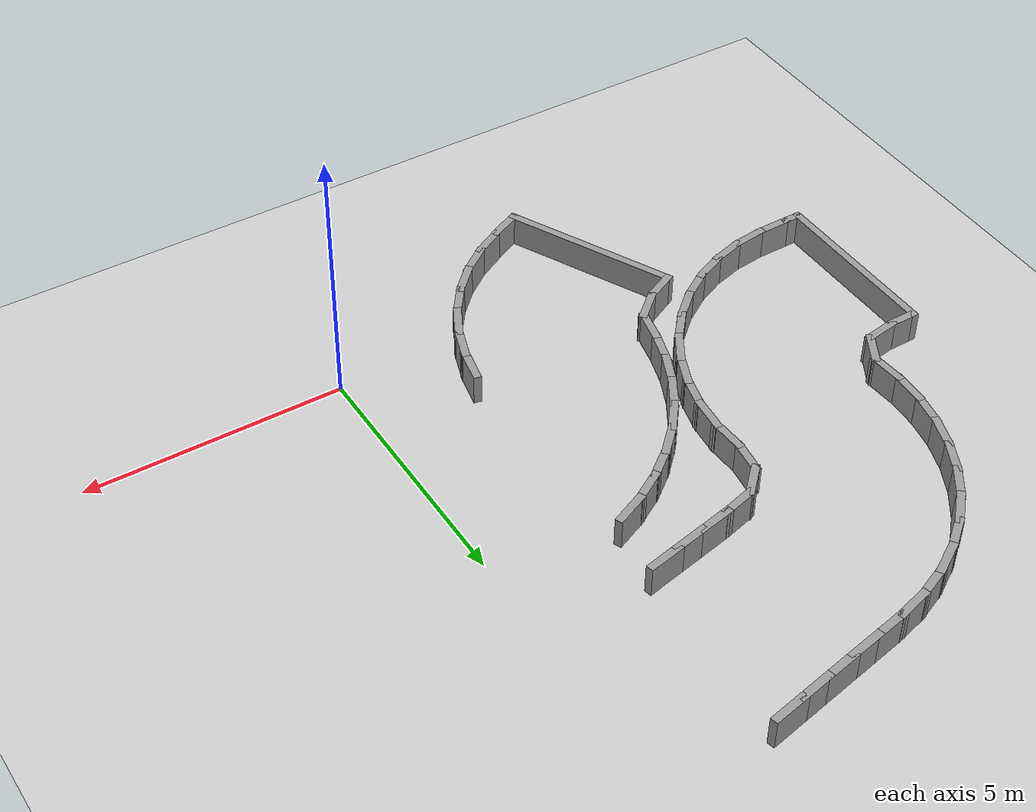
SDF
<sdf version="1.7">
 <world name="default">
  <model name="ground_plane">
   <static>1</static>
   <link name="link">
    <collision name="collision">
     <geometry><plane><normal>0 0 1</normal><size>100 100</size></plane></geometry>
     <surface><friction><ode><mu>100</mu><mu2>50</mu2></ode></friction></surface>
    </collision>
    <visual name="visual">
     <cast_shadows>0</cast_shadows>
     <geometry><plane><normal>0 0 1</normal><size>100 100</size></plane></geometry>
     <material>
      <script><uri>file://media/materials/scripts/gazebo.material</uri><name>Gazebo/Grey</name></script>
     </material>
    </visual>
   </link>
  </model>
  <model name="rand_turn_07">
   <link name="Wall_0">
    <collision name="Wall_0_Collision">
     <geometry><box><size>0.7500 0.1500 0.6000</size></box></geometry>
     <pose>0 0 0.3000 0 -0 0</pose>
    </collision>
    <visual name="Wall_0_Visual">
     <pose>0 0 0.3000 0 -0 0</pose>
     <geometry><box><size>0.7500 0.1500 0.6000</size></box></geometry>
     <material>
      <script><uri>file://media/materials/scripts/gazebo.material</uri><name>Gazebo/Grey</name></script>
      <ambient>1 1 1 1</ambient>
     </material>
    </visual>
    <pose>-6.0920 1.2048 0 0 -0 0.45567</pose>
   </link>
   <link name="Wall_1">
    <collision name="Wall_1_Collision">
     <geometry><box><size>0.7337 0.1500 0.6000</size></box></geometry>
     <pose>0 0 0.3000 0 -0 0</pose>
    </collision>
    <visual name="Wall_1_Visual">
     <pose>0 0 0.3000 0 -0 0</pose>
     <geometry><box><size>0.7337 0.1500 0.6000</size></box></geometry>
     <material>
      <script><uri>file://media/materials/scripts/gazebo.material</uri><name>Gazebo/Grey</name></script>
      <ambient>1 1 1 1</ambient>
     </material>
    </visual>
    <pose>-5.6029 1.5290 0 0 -0 0.71843</pose>
   </link>
   <link name="Wall_2">
    <collision name="Wall_2_Collision">
     <geometry><box><size>0.7490 0.1500 0.6000</size></box></geometry>
     <pose>0 0 0.3000 0 -0 0</pose>
    </collision>
    <visual name="Wall_2_Visual">
     <pose>0 0 0.3000 0 -0 0</pose>
     <geometry><box><size>0.7490 0.1500 0.6000</size></box></geometry>
     <material>
      <script><uri>file://media/materials/scripts/gazebo.material</uri><name>Gazebo/Grey</name></script>
      <ambient>1 1 1 1</ambient>
     </material>
    </visual>
    <pose>-5.3179 2.0134 0 0 -0 1.35128</pose>
   </link>
   <link name="Wall_3">
    <collision name="Wall_3_Collision">
     <geometry><box><size>0.7496 0.1500 0.6000</size></box></geometry>
     <pose>0 0 0.3000 0 -0 0</pose>
    </collision>
    <visual name="Wall_3_Visual">
     <pose>0 0 0.3000 0 -0 0</pose>
     <geometry><box><size>0.7496 0.1500 0.6000</size></box></geometry>
     <material>
      <script><uri>file://media/materials/scripts/gazebo.material</uri><name>Gazebo/Grey</name></script>
      <ambient>1 1 1 1</ambient>
     </material>
    </visual>
    <pose>-5.1639 2.5920 0 0 -0 1.26996</pose>
   </link>
   <link name="Wall_4">
    <collision name="Wall_4_Collision">
     <geometry><box><size>0.7496 0.1500 0.6000</size></box></geometry>
     <pose>0 0 0.3000 0 -0 0</pose>
    </collision>
    <visual name="Wall_4_Visual">
     <pose>0 0 0.3000 0 -0 0</pose>
     <geometry><box><size>0.7496 0.1500 0.6000</size></box></geometry>
     <material>
      <script><uri>file://media/materials/scripts/gazebo.material</uri><name>Gazebo/Grey</name></script>
      <ambient>1 1 1 1</ambient>
     </material>
    </visual>
    <pose>-4.9521 3.1518 0 0 -0 1.14847</pose>
   </link>
   <link name="Wall_5">
    <collision name="Wall_5_Collision">
     <geometry><box><size>0.7496 0.1500 0.6000</size></box></geometry>
     <pose>0 0 0.3000 0 -0 0</pose>
    </collision>
    <visual name="Wall_5_Visual">
     <pose>0 0 0.3000 0 -0 0</pose>
     <geometry><box><size>0.7496 0.1500 0.6000</size></box></geometry>
     <material>
      <script><uri>file://media/materials/scripts/gazebo.material</uri><name>Gazebo/Grey</name></script>
      <ambient>1 1 1 1</ambient>
     </material>
    </visual>
    <pose>-4.6741 3.6818 0 0 -0 1.02698</pose>
   </link>
   <link name="Wall_6">
    <collision name="Wall_6_Collision">
     <geometry><box><size>0.7496 0.1500 0.6000</size></box></geometry>
     <pose>0 0 0.3000 0 -0 0</pose>
    </collision>
    <visual name="Wall_6_Visual">
     <pose>0 0 0.3000 0 -0 0</pose>
     <geometry><box><size>0.7496 0.1500 0.6000</size></box></geometry>
     <material>
      <script><uri>file://media/materials/scripts/gazebo.material</uri><name>Gazebo/Grey</name></script>
      <ambient>1 1 1 1</ambient>
     </material>
    </visual>
    <pose>-4.3339 4.1742 0 0 -0 0.90548</pose>
   </link>
   <link name="Wall_7">
    <collision name="Wall_7_Collision">
     <geometry><box><size>0.7496 0.1500 0.6000</size></box></geometry>
     <pose>0 0 0.3000 0 -0 0</pose>
    </collision>
    <visual name="Wall_7_Visual">
     <pose>0 0 0.3000 0 -0 0</pose>
     <geometry><box><size>0.7496 0.1500 0.6000</size></box></geometry>
     <material>
      <script><uri>file://media/materials/scripts/gazebo.material</uri><name>Gazebo/Grey</name></script>
      <ambient>1 1 1 1</ambient>
     </material>
    </visual>
    <pose>-3.9366 4.6218 0 0 -0 0.78399</pose>
   </link>
   <link name="Wall_8">
    <collision name="Wall_8_Collision">
     <geometry><box><size>0.7496 0.1500 0.6000</size></box></geometry>
     <pose>0 0 0.3000 0 -0 0</pose>
    </collision>
    <visual name="Wall_8_Visual">
     <pose>0 0 0.3000 0 -0 0</pose>
     <geometry><box><size>0.7496 0.1500 0.6000</size></box></geometry>
     <material>
      <script><uri>file://media/materials/scripts/gazebo.material</uri><name>Gazebo/Grey</name></script>
      <ambient>1 1 1 1</ambient>
     </material>
    </visual>
    <pose>-3.4879 5.0179 0 0 -0 0.66250</pose>
   </link>
   <link name="Wall_9">
    <collision name="Wall_9_Collision">
     <geometry><box><size>0.7496 0.1500 0.6000</size></box></geometry>
     <pose>0 0 0.3000 0 -0 0</pose>
    </collision>
    <visual name="Wall_9_Visual">
     <pose>0 0 0.3000 0 -0 0</pose>
     <geometry><box><size>0.7496 0.1500 0.6000</size></box></geometry>
     <material>
      <script><uri>file://media/materials/scripts/gazebo.material</uri><name>Gazebo/Grey</name></script>
      <ambient>1 1 1 1</ambient>
     </material>
    </visual>
    <pose>-2.9946 5.3567 0 0 -0 0.54100</pose>
   </link>
   <link name="Wall_10">
    <collision name="Wall_10_Collision">
     <geometry><box><size>0.7496 0.1500 0.6000</size></box></geometry>
     <pose>0 0 0.3000 0 -0 0</pose>
    </collision>
    <visual name="Wall_10_Visual">
     <pose>0 0 0.3000 0 -0 0</pose>
     <geometry><box><size>0.7496 0.1500 0.6000</size></box></geometry>
     <material>
      <script><uri>file://media/materials/scripts/gazebo.material</uri><name>Gazebo/Grey</name></script>
      <ambient>1 1 1 1</ambient>
     </material>
    </visual>
    <pose>-2.4638 5.6332 0 0 -0 0.41951</pose>
   </link>
   <link name="Wall_32">
    <collision name="Wall_32_Collision">
     <geometry><box><size>0.7500 0.1500 0.6000</size></box></geometry>
     <pose>0 0 0.3000 0 -0 0</pose>
    </collision>
    <visual name="Wall_32_Visual">
     <pose>0 0 0.3000 0 -0 0</pose>
     <geometry><box><size>0.7500 0.1500 0.6000</size></box></geometry>
     <material>
      <script><uri>file://media/materials/scripts/gazebo.material</uri><name>Gazebo/Grey</name></script>
      <ambient>1 1 1 1</ambient>
     </material>
    </visual>
    <pose>-2.3274 6.8343 0 0 -0 -2.93095</pose>
   </link>
   <link name="Wall_33">
    <collision name="Wall_33_Collision">
     <geometry><box><size>0.7500 0.1500 0.6000</size></box></geometry>
     <pose>0 0 0.3000 0 -0 0</pose>
    </collision>
    <visual name="Wall_33_Visual">
     <pose>0 0 0.3000 0 -0 0</pose>
     <geometry><box><size>0.7500 0.1500 0.6000</size></box></geometry>
     <material>
      <script><uri>file://media/materials/scripts/gazebo.material</uri><name>Gazebo/Grey</name></script>
      <ambient>1 1 1 1</ambient>
     </material>
    </visual>
    <pose>-2.9141 6.7088 0 0 -0 -2.93095</pose>
   </link>
   <link name="Wall_34">
    <collision name="Wall_34_Collision">
     <geometry><box><size>0.7500 0.1500 0.6000</size></box></geometry>
     <pose>0 0 0.3000 0 -0 0</pose>
    </collision>
    <visual name="Wall_34_Visual">
     <pose>0 0 0.3000 0 -0 0</pose>
     <geometry><box><size>0.7500 0.1500 0.6000</size></box></geometry>
     <material>
      <script><uri>file://media/materials/scripts/gazebo.material</uri><name>Gazebo/Grey</name></script>
      <ambient>1 1 1 1</ambient>
     </material>
    </visual>
    <pose>-3.5009 6.5834 0 0 -0 -2.93095</pose>
   </link>
   <link name="Wall_35">
    <collision name="Wall_35_Collision">
     <geometry><box><size>0.7482 0.1500 0.6000</size></box></geometry>
     <pose>0 0 0.3000 0 -0 0</pose>
    </collision>
    <visual name="Wall_35_Visual">
     <pose>0 0 0.3000 0 -0 0</pose>
     <geometry><box><size>0.7482 0.1500 0.6000</size></box></geometry>
     <material>
      <script><uri>file://media/materials/scripts/gazebo.material</uri><name>Gazebo/Grey</name></script>
      <ambient>1 1 1 1</ambient>
     </material>
    </visual>
    <pose>-4.0833 6.4438 0 0 -0 -2.88164</pose>
   </link>
   <link name="Wall_36">
    <collision name="Wall_36_Collision">
     <geometry><box><size>0.7395 0.1500 0.6000</size></box></geometry>
     <pose>0 0 0.3000 0 -0 0</pose>
    </collision>
    <visual name="Wall_36_Visual">
     <pose>0 0 0.3000 0 -0 0</pose>
     <geometry><box><size>0.7395 0.1500 0.6000</size></box></geometry>
     <material>
      <script><uri>file://media/materials/scripts/gazebo.material</uri><name>Gazebo/Grey</name></script>
      <ambient>1 1 1 1</ambient>
     </material>
    </visual>
    <pose>-4.5806 6.1582 0 0 -0 -2.35509</pose>
   </link>
   <link name="Wall_37">
    <collision name="Wall_37_Collision">
     <geometry><box><size>0.7401 0.1500 0.6000</size></box></geometry>
     <pose>0 0 0.3000 0 -0 0</pose>
    </collision>
    <visual name="Wall_37_Visual">
     <pose>0 0 0.3000 0 -0 0</pose>
     <geometry><box><size>0.7401 0.1500 0.6000</size></box></geometry>
     <material>
      <script><uri>file://media/materials/scripts/gazebo.material</uri><name>Gazebo/Grey</name></script>
      <ambient>1 1 1 1</ambient>
     </material>
    </visual>
    <pose>-4.8301 5.6574 0 0 -0 -1.71134</pose>
   </link>
   <link name="Wall_38">
    <collision name="Wall_38_Collision">
     <geometry><box><size>0.7494 0.1500 0.6000</size></box></geometry>
     <pose>0 0 0.3000 0 -0 0</pose>
    </collision>
    <visual name="Wall_38_Visual">
     <pose>0 0 0.3000 0 -0 0</pose>
     <geometry><box><size>0.7494 0.1500 0.6000</size></box></geometry>
     <material>
      <script><uri>file://media/materials/scripts/gazebo.material</uri><name>Gazebo/Grey</name></script>
      <ambient>1 1 1 1</ambient>
     </material>
    </visual>
    <pose>-4.8572 5.0659 0 0 -0 -1.52324</pose>
   </link>
   <link name="Wall_39">
    <collision name="Wall_39_Collision">
     <geometry><box><size>0.7494 0.1500 0.6000</size></box></geometry>
     <pose>0 0 0.3000 0 -0 0</pose>
    </collision>
    <visual name="Wall_39_Visual">
     <pose>0 0 0.3000 0 -0 0</pose>
     <geometry><box><size>0.7494 0.1500 0.6000</size></box></geometry>
     <material>
      <script><uri>file://media/materials/scripts/gazebo.material</uri><name>Gazebo/Grey</name></script>
      <ambient>1 1 1 1</ambient>
     </material>
    </visual>
    <pose>-4.8741 4.4684 0 0 -0 -1.67497</pose>
   </link>
   <link name="Wall_40">
    <collision name="Wall_40_Collision">
     <geometry><box><size>0.7494 0.1500 0.6000</size></box></geometry>
     <pose>0 0 0.3000 0 -0 0</pose>
    </collision>
    <visual name="Wall_40_Visual">
     <pose>0 0 0.3000 0 -0 0</pose>
     <geometry><box><size>0.7494 0.1500 0.6000</size></box></geometry>
     <material>
      <script><uri>file://media/materials/scripts/gazebo.material</uri><name>Gazebo/Grey</name></script>
      <ambient>1 1 1 1</ambient>
     </material>
    </visual>
    <pose>-4.9796 3.8800 0 0 -0 -1.82162</pose>
   </link>
   <link name="Wall_41">
    <collision name="Wall_41_Collision">
     <geometry><box><size>0.7494 0.1500 0.6000</size></box></geometry>
     <pose>0 0 0.3000 0 -0 0</pose>
    </collision>
    <visual name="Wall_41_Visual">
     <pose>0 0 0.3000 0 -0 0</pose>
     <geometry><box><size>0.7494 0.1500 0.6000</size></box></geometry>
     <material>
      <script><uri>file://media/materials/scripts/gazebo.material</uri><name>Gazebo/Grey</name></script>
      <ambient>1 1 1 1</ambient>
     </material>
    </visual>
    <pose>-5.1714 3.3139 0 0 -0 -1.97326</pose>
   </link>
   <link name="Wall_42">
    <collision name="Wall_42_Collision">
     <geometry><box><size>0.7494 0.1500 0.6000</size></box></geometry>
     <pose>0 0 0.3000 0 -0 0</pose>
    </collision>
    <visual name="Wall_42_Visual">
     <pose>0 0 0.3000 0 -0 0</pose>
     <geometry><box><size>0.7494 0.1500 0.6000</size></box></geometry>
     <material>
      <script><uri>file://media/materials/scripts/gazebo.material</uri><name>Gazebo/Grey</name></script>
      <ambient>1 1 1 1</ambient>
     </material>
    </visual>
    <pose>-5.4454 2.7827 0 0 -0 -2.12064</pose>
   </link>
   <link name="Wall_43">
    <collision name="Wall_43_Collision">
     <geometry><box><size>0.7494 0.1500 0.6000</size></box></geometry>
     <pose>0 0 0.3000 0 -0 0</pose>
    </collision>
    <visual name="Wall_43_Visual">
     <pose>0 0 0.3000 0 -0 0</pose>
     <geometry><box><size>0.7494 0.1500 0.6000</size></box></geometry>
     <material>
      <script><uri>file://media/materials/scripts/gazebo.material</uri><name>Gazebo/Grey</name></script>
      <ambient>1 1 1 1</ambient>
     </material>
    </visual>
    <pose>-5.7952 2.2980 0 0 -0 -2.27124</pose>
   </link>
   <link name="Wall_44">
    <collision name="Wall_44_Collision">
     <geometry><box><size>0.7494 0.1500 0.6000</size></box></geometry>
     <pose>0 0 0.3000 0 -0 0</pose>
    </collision>
    <visual name="Wall_44_Visual">
     <pose>0 0 0.3000 0 -0 0</pose>
     <geometry><box><size>0.7494 0.1500 0.6000</size></box></geometry>
     <material>
      <script><uri>file://media/materials/scripts/gazebo.material</uri><name>Gazebo/Grey</name></script>
      <ambient>1 1 1 1</ambient>
     </material>
    </visual>
    <pose>-6.2133 1.8708 0 0 -0 -2.41966</pose>
   </link>
   <link name="Wall_45">
    <collision name="Wall_45_Collision">
     <geometry><box><size>0.7494 0.1500 0.6000</size></box></geometry>
     <pose>0 0 0.3000 0 -0 0</pose>
    </collision>
    <visual name="Wall_45_Visual">
     <pose>0 0 0.3000 0 -0 0</pose>
     <geometry><box><size>0.7494 0.1500 0.6000</size></box></geometry>
     <material>
      <script><uri>file://media/materials/scripts/gazebo.material</uri><name>Gazebo/Grey</name></script>
      <ambient>1 1 1 1</ambient>
     </material>
    </visual>
    <pose>-6.6901 1.5105 0 0 -0 -2.56922</pose>
   </link>
   <link name="Wall_46">
    <collision name="Wall_46_Collision">
     <geometry><box><size>0.7494 0.1500 0.6000</size></box></geometry>
     <pose>0 0 0.3000 0 -0 0</pose>
    </collision>
    <visual name="Wall_46_Visual">
     <pose>0 0 0.3000 0 -0 0</pose>
     <geometry><box><size>0.7494 0.1500 0.6000</size></box></geometry>
     <material>
      <script><uri>file://media/materials/scripts/gazebo.material</uri><name>Gazebo/Grey</name></script>
      <ambient>1 1 1 1</ambient>
     </material>
    </visual>
    <pose>-7.2154 1.2251 0 0 -0 -2.71868</pose>
   </link>
   <link name="Wall_47">
    <collision name="Wall_47_Collision">
     <geometry><box><size>0.7494 0.1500 0.6000</size></box></geometry>
     <pose>0 0 0.3000 0 -0 0</pose>
    </collision>
    <visual name="Wall_47_Visual">
     <pose>0 0 0.3000 0 -0 0</pose>
     <geometry><box><size>0.7494 0.1500 0.6000</size></box></geometry>
     <material>
      <script><uri>file://media/materials/scripts/gazebo.material</uri><name>Gazebo/Grey</name></script>
      <ambient>1 1 1 1</ambient>
     </material>
    </visual>
    <pose>-7.7771 1.0209 0 0 -0 -2.86720</pose>
   </link>
   <link name="Wall_48">
    <collision name="Wall_48_Collision">
     <geometry><box><size>0.7494 0.1500 0.6000</size></box></geometry>
     <pose>0 0 0.3000 0 -0 0</pose>
    </collision>
    <visual name="Wall_48_Visual">
     <pose>0 0 0.3000 0 -0 0</pose>
     <geometry><box><size>0.7494 0.1500 0.6000</size></box></geometry>
     <material>
      <script><uri>file://media/materials/scripts/gazebo.material</uri><name>Gazebo/Grey</name></script>
      <ambient>1 1 1 1</ambient>
     </material>
    </visual>
    <pose>-8.3630 0.9027 0 0 -0 -3.01770</pose>
   </link>
   <link name="Wall_49">
    <collision name="Wall_49_Collision">
     <geometry><box><size>0.7499 0.1500 0.6000</size></box></geometry>
     <pose>0 0 0.3000 0 -0 0</pose>
    </collision>
    <visual name="Wall_49_Visual">
     <pose>0 0 0.3000 0 -0 0</pose>
     <geometry><box><size>0.7499 0.1500 0.6000</size></box></geometry>
     <material>
      <script><uri>file://media/materials/scripts/gazebo.material</uri><name>Gazebo/Grey</name></script>
      <ambient>1 1 1 1</ambient>
     </material>
    </visual>
    <pose>-8.9603 0.8606 0 0 -0 -3.12460</pose>
   </link>
   <link name="Wall_50">
    <collision name="Wall_50_Collision">
     <geometry><box><size>0.4548 0.1500 0.6000</size></box></geometry>
     <pose>0 0 0.3000 0 -0 0</pose>
    </collision>
    <visual name="Wall_50_Visual">
     <pose>0 0 0.3000 0 -0 0</pose>
     <geometry><box><size>0.4548 0.1500 0.6000</size></box></geometry>
     <material>
      <script><uri>file://media/materials/scripts/gazebo.material</uri><name>Gazebo/Grey</name></script>
      <ambient>1 1 1 1</ambient>
     </material>
    </visual>
    <pose>-9.4127 0.8537 0 0 -0 -3.13016</pose>
   </link>
   <link name="Wall_51">
    <collision name="Wall_51_Collision">
     <geometry><box><size>0.7500 0.1500 0.6000</size></box></geometry>
     <pose>0 0 0.3000 0 -0 0</pose>
    </collision>
    <visual name="Wall_51_Visual">
     <pose>0 0 0.3000 0 -0 0</pose>
     <geometry><box><size>0.7500 0.1500 0.6000</size></box></geometry>
     <material>
      <script><uri>file://media/materials/scripts/gazebo.material</uri><name>Gazebo/Grey</name></script>
      <ambient>1 1 1 1</ambient>
     </material>
    </visual>
    <pose>-4.5930 -1.8538 0 0 -0 0.45567</pose>
   </link>
   <link name="Wall_52">
    <collision name="Wall_52_Collision">
     <geometry><box><size>0.7496 0.1500 0.6000</size></box></geometry>
     <pose>0 0 0.3000 0 -0 0</pose>
    </collision>
    <visual name="Wall_52_Visual">
     <pose>0 0 0.3000 0 -0 0</pose>
     <geometry><box><size>0.7496 0.1500 0.6000</size></box></geometry>
     <material>
      <script><uri>file://media/materials/scripts/gazebo.material</uri><name>Gazebo/Grey</name></script>
      <ambient>1 1 1 1</ambient>
     </material>
    </visual>
    <pose>-4.0601 -1.5789 0 0 -0 0.49708</pose>
   </link>
   <link name="Wall_53">
    <collision name="Wall_53_Collision">
     <geometry><box><size>0.7494 0.1500 0.6000</size></box></geometry>
     <pose>0 0 0.3000 0 -0 0</pose>
    </collision>
    <visual name="Wall_53_Visual">
     <pose>0 0 0.3000 0 -0 0</pose>
     <geometry><box><size>0.7494 0.1500 0.6000</size></box></geometry>
     <material>
      <script><uri>file://media/materials/scripts/gazebo.material</uri><name>Gazebo/Grey</name></script>
      <ambient>1 1 1 1</ambient>
     </material>
    </visual>
    <pose>-3.5566 -1.2564 0 0 -0 0.64203</pose>
   </link>
   <link name="Wall_54">
    <collision name="Wall_54_Collision">
     <geometry><box><size>0.7494 0.1500 0.6000</size></box></geometry>
     <pose>0 0 0.3000 0 -0 0</pose>
    </collision>
    <visual name="Wall_54_Visual">
     <pose>0 0 0.3000 0 -0 0</pose>
     <geometry><box><size>0.7494 0.1500 0.6000</size></box></geometry>
     <material>
      <script><uri>file://media/materials/scripts/gazebo.material</uri><name>Gazebo/Grey</name></script>
      <ambient>1 1 1 1</ambient>
     </material>
    </visual>
    <pose>-3.1052 -0.8644 0 0 -0 0.78828</pose>
   </link>
   <link name="Wall_55">
    <collision name="Wall_55_Collision">
     <geometry><box><size>0.7494 0.1500 0.6000</size></box></geometry>
     <pose>0 0 0.3000 0 -0 0</pose>
    </collision>
    <visual name="Wall_55_Visual">
     <pose>0 0 0.3000 0 -0 0</pose>
     <geometry><box><size>0.7494 0.1500 0.6000</size></box></geometry>
     <material>
      <script><uri>file://media/materials/scripts/gazebo.material</uri><name>Gazebo/Grey</name></script>
      <ambient>1 1 1 1</ambient>
     </material>
    </visual>
    <pose>-2.7169 -0.4100 0 0 -0 0.93904</pose>
   </link>
   <link name="Wall_56">
    <collision name="Wall_56_Collision">
     <geometry><box><size>0.7494 0.1500 0.6000</size></box></geometry>
     <pose>0 0 0.3000 0 -0 0</pose>
    </collision>
    <visual name="Wall_56_Visual">
     <pose>0 0 0.3000 0 -0 0</pose>
     <geometry><box><size>0.7494 0.1500 0.6000</size></box></geometry>
     <material>
      <script><uri>file://media/materials/scripts/gazebo.material</uri><name>Gazebo/Grey</name></script>
      <ambient>1 1 1 1</ambient>
     </material>
    </visual>
    <pose>-2.3999 0.0968 0 0 -0 1.08465</pose>
   </link>
   <link name="Wall_57">
    <collision name="Wall_57_Collision">
     <geometry><box><size>0.7494 0.1500 0.6000</size></box></geometry>
     <pose>0 0 0.3000 0 -0 0</pose>
    </collision>
    <visual name="Wall_57_Visual">
     <pose>0 0 0.3000 0 -0 0</pose>
     <geometry><box><size>0.7494 0.1500 0.6000</size></box></geometry>
     <material>
      <script><uri>file://media/materials/scripts/gazebo.material</uri><name>Gazebo/Grey</name></script>
      <ambient>1 1 1 1</ambient>
     </material>
    </visual>
    <pose>-2.1614 0.6449 0 0 -0 1.23605</pose>
   </link>
   <link name="Wall_58">
    <collision name="Wall_58_Collision">
     <geometry><box><size>0.7497 0.1500 0.6000</size></box></geometry>
     <pose>0 0 0.3000 0 -0 0</pose>
    </collision>
    <visual name="Wall_58_Visual">
     <pose>0 0 0.3000 0 -0 0</pose>
     <geometry><box><size>0.7497 0.1500 0.6000</size></box></geometry>
     <material>
      <script><uri>file://media/materials/scripts/gazebo.material</uri><name>Gazebo/Grey</name></script>
      <ambient>1 1 1 1</ambient>
     </material>
    </visual>
    <pose>-2.0012 1.2214 0 0 -0 1.36336</pose>
   </link>
   <link name="Wall_98">
    <collision name="Wall_98_Collision">
     <geometry><box><size>0.7500 0.1500 0.6000</size></box></geometry>
     <pose>0 0 0.3000 0 -0 0</pose>
    </collision>
    <visual name="Wall_98_Visual">
     <pose>0 0 0.3000 0 -0 0</pose>
     <geometry><box><size>0.7500 0.1500 0.6000</size></box></geometry>
     <material>
      <script><uri>file://media/materials/scripts/gazebo.material</uri><name>Gazebo/Grey</name></script>
      <ambient>1 1 1 1</ambient>
     </material>
    </visual>
    <pose>-2.1931 10.3462 0 0 -0 -2.93095</pose>
   </link>
   <link name="Wall_99">
    <collision name="Wall_99_Collision">
     <geometry><box><size>0.7500 0.1500 0.6000</size></box></geometry>
     <pose>0 0 0.3000 0 -0 0</pose>
    </collision>
    <visual name="Wall_99_Visual">
     <pose>0 0 0.3000 0 -0 0</pose>
     <geometry><box><size>0.7500 0.1500 0.6000</size></box></geometry>
     <material>
      <script><uri>file://media/materials/scripts/gazebo.material</uri><name>Gazebo/Grey</name></script>
      <ambient>1 1 1 1</ambient>
     </material>
    </visual>
    <pose>-2.7799 10.2207 0 0 -0 -2.93095</pose>
   </link>
   <link name="Wall_100">
    <collision name="Wall_100_Collision">
     <geometry><box><size>0.7500 0.1500 0.6000</size></box></geometry>
     <pose>0 0 0.3000 0 -0 0</pose>
    </collision>
    <visual name="Wall_100_Visual">
     <pose>0 0 0.3000 0 -0 0</pose>
     <geometry><box><size>0.7500 0.1500 0.6000</size></box></geometry>
     <material>
      <script><uri>file://media/materials/scripts/gazebo.material</uri><name>Gazebo/Grey</name></script>
      <ambient>1 1 1 1</ambient>
     </material>
    </visual>
    <pose>-3.3666 10.0953 0 0 -0 -2.93095</pose>
   </link>
   <link name="Wall_101">
    <collision name="Wall_101_Collision">
     <geometry><box><size>0.7500 0.1500 0.6000</size></box></geometry>
     <pose>0 0 0.3000 0 -0 0</pose>
    </collision>
    <visual name="Wall_101_Visual">
     <pose>0 0 0.3000 0 -0 0</pose>
     <geometry><box><size>0.7500 0.1500 0.6000</size></box></geometry>
     <material>
      <script><uri>file://media/materials/scripts/gazebo.material</uri><name>Gazebo/Grey</name></script>
      <ambient>1 1 1 1</ambient>
     </material>
    </visual>
    <pose>-3.9533 9.9698 0 0 -0 -2.93095</pose>
   </link>
   <link name="Wall_102">
    <collision name="Wall_102_Collision">
     <geometry><box><size>0.7500 0.1500 0.6000</size></box></geometry>
     <pose>0 0 0.3000 0 -0 0</pose>
    </collision>
    <visual name="Wall_102_Visual">
     <pose>0 0 0.3000 0 -0 0</pose>
     <geometry><box><size>0.7500 0.1500 0.6000</size></box></geometry>
     <material>
      <script><uri>file://media/materials/scripts/gazebo.material</uri><name>Gazebo/Grey</name></script>
      <ambient>1 1 1 1</ambient>
     </material>
    </visual>
    <pose>-4.5401 9.8444 0 0 -0 -2.93088</pose>
   </link>
   <link name="Wall_103">
    <collision name="Wall_103_Collision">
     <geometry><box><size>0.7495 0.1500 0.6000</size></box></geometry>
     <pose>0 0 0.3000 0 -0 0</pose>
    </collision>
    <visual name="Wall_103_Visual">
     <pose>0 0 0.3000 0 -0 0</pose>
     <geometry><box><size>0.7495 0.1500 0.6000</size></box></geometry>
     <material>
      <script><uri>file://media/materials/scripts/gazebo.material</uri><name>Gazebo/Grey</name></script>
      <ambient>1 1 1 1</ambient>
     </material>
    </visual>
    <pose>-5.1220 9.7005 0 0 -0 -2.86763</pose>
   </link>
   <link name="Wall_104">
    <collision name="Wall_104_Collision">
     <geometry><box><size>0.7495 0.1500 0.6000</size></box></geometry>
     <pose>0 0 0.3000 0 -0 0</pose>
    </collision>
    <visual name="Wall_104_Visual">
     <pose>0 0 0.3000 0 -0 0</pose>
     <geometry><box><size>0.7495 0.1500 0.6000</size></box></geometry>
     <material>
      <script><uri>file://media/materials/scripts/gazebo.material</uri><name>Gazebo/Grey</name></script>
      <ambient>1 1 1 1</ambient>
     </material>
    </visual>
    <pose>-5.6855 9.4999 0 0 -0 -2.73143</pose>
   </link>
   <link name="Wall_105">
    <collision name="Wall_105_Collision">
     <geometry><box><size>0.7495 0.1500 0.6000</size></box></geometry>
     <pose>0 0 0.3000 0 -0 0</pose>
    </collision>
    <visual name="Wall_105_Visual">
     <pose>0 0 0.3000 0 -0 0</pose>
     <geometry><box><size>0.7495 0.1500 0.6000</size></box></geometry>
     <material>
      <script><uri>file://media/materials/scripts/gazebo.material</uri><name>Gazebo/Grey</name></script>
      <ambient>1 1 1 1</ambient>
     </material>
    </visual>
    <pose>-6.2159 9.2237 0 0 -0 -2.59151</pose>
   </link>
   <link name="Wall_106">
    <collision name="Wall_106_Collision">
     <geometry><box><size>0.7495 0.1500 0.6000</size></box></geometry>
     <pose>0 0 0.3000 0 -0 0</pose>
    </collision>
    <visual name="Wall_106_Visual">
     <pose>0 0 0.3000 0 -0 0</pose>
     <geometry><box><size>0.7495 0.1500 0.6000</size></box></geometry>
     <material>
      <script><uri>file://media/materials/scripts/gazebo.material</uri><name>Gazebo/Grey</name></script>
      <ambient>1 1 1 1</ambient>
     </material>
    </visual>
    <pose>-6.7029 8.8766 0 0 -0 -2.45342</pose>
   </link>
   <link name="Wall_107">
    <collision name="Wall_107_Collision">
     <geometry><box><size>0.7495 0.1500 0.6000</size></box></geometry>
     <pose>0 0 0.3000 0 -0 0</pose>
    </collision>
    <visual name="Wall_107_Visual">
     <pose>0 0 0.3000 0 -0 0</pose>
     <geometry><box><size>0.7495 0.1500 0.6000</size></box></geometry>
     <material>
      <script><uri>file://media/materials/scripts/gazebo.material</uri><name>Gazebo/Grey</name></script>
      <ambient>1 1 1 1</ambient>
     </material>
    </visual>
    <pose>-7.1378 8.4660 0 0 -0 -2.31629</pose>
   </link>
   <link name="Wall_108">
    <collision name="Wall_108_Collision">
     <geometry><box><size>0.7495 0.1500 0.6000</size></box></geometry>
     <pose>0 0 0.3000 0 -0 0</pose>
    </collision>
    <visual name="Wall_108_Visual">
     <pose>0 0 0.3000 0 -0 0</pose>
     <geometry><box><size>0.7495 0.1500 0.6000</size></box></geometry>
     <material>
      <script><uri>file://media/materials/scripts/gazebo.material</uri><name>Gazebo/Grey</name></script>
      <ambient>1 1 1 1</ambient>
     </material>
    </visual>
    <pose>-7.5116 7.9992 0 0 -0 -2.17560</pose>
   </link>
   <link name="Wall_109">
    <collision name="Wall_109_Collision">
     <geometry><box><size>0.7495 0.1500 0.6000</size></box></geometry>
     <pose>0 0 0.3000 0 -0 0</pose>
    </collision>
    <visual name="Wall_109_Visual">
     <pose>0 0 0.3000 0 -0 0</pose>
     <geometry><box><size>0.7495 0.1500 0.6000</size></box></geometry>
     <material>
      <script><uri>file://media/materials/scripts/gazebo.material</uri><name>Gazebo/Grey</name></script>
      <ambient>1 1 1 1</ambient>
     </material>
    </visual>
    <pose>-7.8171 7.4850 0 0 -0 -2.03828</pose>
   </link>
   <link name="Wall_110">
    <collision name="Wall_110_Collision">
     <geometry><box><size>0.7495 0.1500 0.6000</size></box></geometry>
     <pose>0 0 0.3000 0 -0 0</pose>
    </collision>
    <visual name="Wall_110_Visual">
     <pose>0 0 0.3000 0 -0 0</pose>
     <geometry><box><size>0.7495 0.1500 0.6000</size></box></geometry>
     <material>
      <script><uri>file://media/materials/scripts/gazebo.material</uri><name>Gazebo/Grey</name></script>
      <ambient>1 1 1 1</ambient>
     </material>
    </visual>
    <pose>-8.0492 6.9339 0 0 -0 -1.90056</pose>
   </link>
   <link name="Wall_111">
    <collision name="Wall_111_Collision">
     <geometry><box><size>0.7495 0.1500 0.6000</size></box></geometry>
     <pose>0 0 0.3000 0 -0 0</pose>
    </collision>
    <visual name="Wall_111_Visual">
     <pose>0 0 0.3000 0 -0 0</pose>
     <geometry><box><size>0.7495 0.1500 0.6000</size></box></geometry>
     <material>
      <script><uri>file://media/materials/scripts/gazebo.material</uri><name>Gazebo/Grey</name></script>
      <ambient>1 1 1 1</ambient>
     </material>
    </visual>
    <pose>-8.2027 6.3559 0 0 -0 -1.76028</pose>
   </link>
   <link name="Wall_112">
    <collision name="Wall_112_Collision">
     <geometry><box><size>0.7495 0.1500 0.6000</size></box></geometry>
     <pose>0 0 0.3000 0 -0 0</pose>
    </collision>
    <visual name="Wall_112_Visual">
     <pose>0 0 0.3000 0 -0 0</pose>
     <geometry><box><size>0.7495 0.1500 0.6000</size></box></geometry>
     <material>
      <script><uri>file://media/materials/scripts/gazebo.material</uri><name>Gazebo/Grey</name></script>
      <ambient>1 1 1 1</ambient>
     </material>
    </visual>
    <pose>-8.2749 5.7622 0 0 -0 -1.62314</pose>
   </link>
   <link name="Wall_113">
    <collision name="Wall_113_Collision">
     <geometry><box><size>0.7496 0.1500 0.6000</size></box></geometry>
     <pose>0 0 0.3000 0 -0 0</pose>
    </collision>
    <visual name="Wall_113_Visual">
     <pose>0 0 0.3000 0 -0 0</pose>
     <geometry><box><size>0.7496 0.1500 0.6000</size></box></geometry>
     <material>
      <script><uri>file://media/materials/scripts/gazebo.material</uri><name>Gazebo/Grey</name></script>
      <ambient>1 1 1 1</ambient>
     </material>
    </visual>
    <pose>-8.2691 5.1638 0 0 -0 -1.49924</pose>
   </link>
   <link name="Wall_114">
    <collision name="Wall_114_Collision">
     <geometry><box><size>0.7263 0.1500 0.6000</size></box></geometry>
     <pose>0 0 0.3000 0 -0 0</pose>
    </collision>
    <visual name="Wall_114_Visual">
     <pose>0 0 0.3000 0 -0 0</pose>
     <geometry><box><size>0.7263 0.1500 0.6000</size></box></geometry>
     <material>
      <script><uri>file://media/materials/scripts/gazebo.material</uri><name>Gazebo/Grey</name></script>
      <ambient>1 1 1 1</ambient>
     </material>
    </visual>
    <pose>-8.3892 4.6138 0 0 -0 -2.08399</pose>
   </link>
   <link name="Wall_115">
    <collision name="Wall_115_Collision">
     <geometry><box><size>0.7398 0.1500 0.6000</size></box></geometry>
     <pose>0 0 0.3000 0 -0 0</pose>
    </collision>
    <visual name="Wall_115_Visual">
     <pose>0 0 0.3000 0 -0 0</pose>
     <geometry><box><size>0.7398 0.1500 0.6000</size></box></geometry>
     <material>
      <script><uri>file://media/materials/scripts/gazebo.material</uri><name>Gazebo/Grey</name></script>
      <ambient>1 1 1 1</ambient>
     </material>
    </visual>
    <pose>-8.8213 4.3132 0 0 -0 -2.97275</pose>
   </link>
   <link name="Wall_116">
    <collision name="Wall_116_Collision">
     <geometry><box><size>0.6420 0.1500 0.6000</size></box></geometry>
     <pose>0 0 0.3000 0 -0 0</pose>
    </collision>
    <visual name="Wall_116_Visual">
     <pose>0 0 0.3000 0 -0 0</pose>
     <geometry><box><size>0.6420 0.1500 0.6000</size></box></geometry>
     <material>
      <script><uri>file://media/materials/scripts/gazebo.material</uri><name>Gazebo/Grey</name></script>
      <ambient>1 1 1 1</ambient>
     </material>
    </visual>
    <pose>-9.3580 4.2608 0 0 -0 -3.13016</pose>
   </link>
   <link name="Wall_117">
    <collision name="Wall_117_Collision">
     <geometry><box><size>3.5562 0.1500 0.6000</size></box></geometry>
     <pose>0 0 0.3000 0 -0 0</pose>
    </collision>
    <visual name="Wall_117_Visual">
     <pose>0 0 0.3000 0 -0 0</pose>
     <geometry><box><size>3.5562 0.1500 0.6000</size></box></geometry>
     <material>
      <script><uri>file://media/materials/scripts/gazebo.material</uri><name>Gazebo/Grey</name></script>
      <ambient>1 1 1 1</ambient>
     </material>
    </visual>
    <pose>-5.6119 -0.4565 0 0 -0 2.02647</pose>
   </link>
   <link name="Wall_118">
    <collision name="Wall_118_Collision">
     <geometry><box><size>3.5562 0.1500 0.6000</size></box></geometry>
     <pose>0 0 0.3000 0 -0 0</pose>
    </collision>
    <visual name="Wall_118_Visual">
     <pose>0 0 0.3000 0 -0 0</pose>
     <geometry><box><size>3.5562 0.1500 0.6000</size></box></geometry>
     <material>
      <script><uri>file://media/materials/scripts/gazebo.material</uri><name>Gazebo/Grey</name></script>
      <ambient>1 1 1 1</ambient>
     </material>
    </visual>
    <pose>-9.5846 2.5550 0 0 -0 1.58223</pose>
   </link>
   <static>1</static>
  </model>
 </world>
</sdf>
